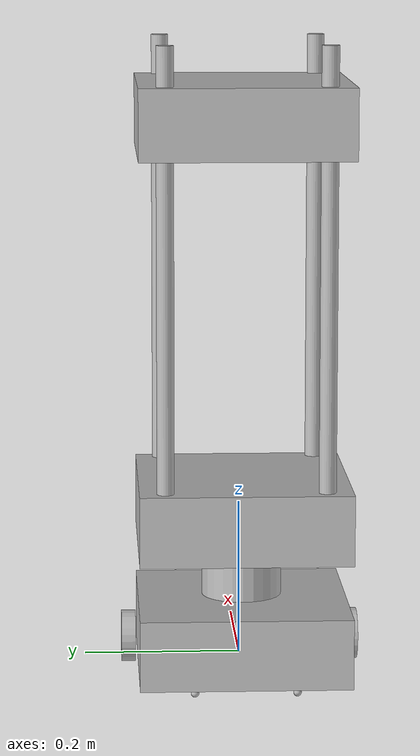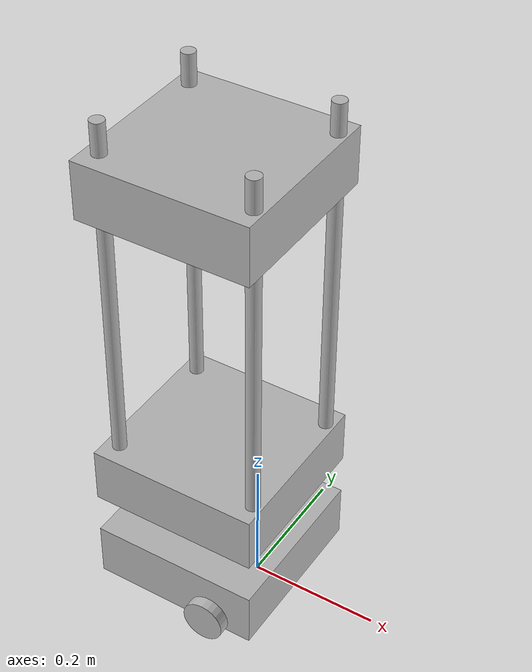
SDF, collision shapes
<?xml version="1.0" ?>
<sdf version="1.5">
  <model name="turtlebot3_waffle_pi">
  <pose>0.0 0.0 0.0 0.0 0.0 0.0</pose>

    <link name="base_footprint"/>

    <link name="base_link">

      <inertial>
        <pose>-0.064 0 0.048 0 0 0</pose>
        <inertia>
          <ixx>4.2111447e-02</ixx>
          <ixy>0</ixy>
          <ixz>0</ixz>
          <iyy>4.2111447e-02</iyy>
          <iyz>0</iyz>
          <izz>7.5254874e-02</izz>
        </inertia>
        <mass>1.3729096e+00</mass>
      </inertial>

      <collision name="base_collision">
        <pose>-0.064 0 0.048 0 0 0</pose>
        <geometry>
          <box>
            <size>0.265 0.265 0.089</size>
          </box>
        </geometry>
      </collision>

      <visual name="base_visual">
        <pose>-0.064 0 0 0 0 0</pose>
        <geometry>
          <mesh>
            <uri>model://turtlebot3_waffle_pi/meshes/waffle_pi_base.dae</uri>
            <scale>0.001 0.001 0.001</scale>
          </mesh>
        </geometry>
      </visual>
    </link>

    <link name="middle_base_link">

      <inertial>
        <pose>-0.064 0 0.205 0 0 0</pose>
        <inertia>
          <ixx>4.2111447e-02</ixx>
          <ixy>0</ixy>
          <ixz>0</ixz>
          <iyy>4.2111447e-02</iyy>
          <iyz>0</iyz>
          <izz>7.5254874e-02</izz>
        </inertia>
        <mass>0.0729096e+00</mass>
      </inertial>

      <collision name="middle_base_collision">
        <pose>-0.064 0 0.205 0 0 0</pose>
        <geometry>
          <box>
            <size>0.265 0.265 0.089</size>
          </box>
        </geometry>
      </collision>

      <visual name="middle_base_visual">
        <pose>-0.064 0 0.205 0 0 0</pose>
        <geometry>
          <mesh>
            <uri>model://turtlebot3_waffle_pi/meshes/waffle_pi_base.dae</uri>
            <scale>0.001 0.001 0.001</scale>
          </mesh>
        </geometry>
      </visual>
    </link>

    <link name="top_base_link">

      <inertial>
        <pose>-0.064 0 0.705 0 0 0</pose>
        <inertia>
          <ixx>4.2111447e-02</ixx>
          <ixy>0</ixy>
          <ixz>0</ixz>
          <iyy>4.2111447e-02</iyy>
          <iyz>0</iyz>
          <izz>7.5254874e-02</izz>
        </inertia>
        <mass>0.0729096e+00</mass>
      </inertial>

      <collision name="top_base_collision">
        <pose>-0.064 0 0.705 0 0 0</pose>
        <geometry>
          <box>
            <size>0.265 0.265 0.089</size>
          </box>
        </geometry>
      </collision>

      <visual name="top_base_visual">
        <pose>-0.064 0 0.705 0 0 0</pose>
        <geometry>
          <mesh>
            <uri>model://turtlebot3_waffle_pi/meshes/waffle_pi_base.dae</uri>
            <scale>0.001 0.001 0.001</scale>
          </mesh>
        </geometry>
      </visual>
    </link>

    <!-- middle_pillar -->

    <link name="top_left_middle_pillar_link">
      <inertial>
        <pose>0.054 0.1 0.1718 0 0 0</pose>
        <inertia>
          <ixx>0.001</ixx>
          <ixy>0.000</ixy>
          <ixz>0.000</ixz>
          <iyy>0.001</iyy>
          <iyz>0.000</iyz>
          <izz>0.001</izz>
        </inertia>
        <mass>0.014</mass>
      </inertial>

      <collision name="top_left_middle_pillar_collision">
        <pose>0.054 0.1 0.1718 0 0 0</pose>
        <geometry>
          <cylinder>
            <radius>0</radius>
            <length>0.2</length>
          </cylinder>
        </geometry>
      </collision>

      <visual name="top_left_middle_pillar_visual">
        <pose>0.054 0.1 0.1718 0 0 0</pose>
        <geometry>
          <cylinder>
            <radius>0</radius>
            <length>0.2</length>
          </cylinder>
        </geometry>
      </visual>
    </link>

    <link name="top_right_middle_pillar_link">
      <inertial>
        <pose>0.054 -0.1 0.1718 0 0 0</pose>
        <inertia>
          <ixx>0.001</ixx>
          <ixy>0.000</ixy>
          <ixz>0.000</ixz>
          <iyy>0.001</iyy>
          <iyz>0.000</iyz>
          <izz>0.001</izz>
        </inertia>
        <mass>0.014</mass>
      </inertial>

      <collision name="top_right_middle_pillar_collision">
        <pose>0.054 -0.1 0.1718 0 0 0</pose>
        <geometry>
          <cylinder>
            <radius>0</radius>
            <length>0.2</length>
          </cylinder>
        </geometry>
      </collision>

      <visual name="top_right_middle_pillar_visual">
        <pose>0.054 -0.1 0.1718 0 0 0</pose>
        <geometry>
          <cylinder>
            <radius>0</radius>
            <length>0.2</length>
          </cylinder>
        </geometry>
      </visual>
    </link>

    <link name="bottom_left_middle_pillar_link">
      <inertial>
        <pose>-0.174 0.1 0.1718 0 0 0</pose>
        <inertia>
          <ixx>0.001</ixx>
          <ixy>0.000</ixy>
          <ixz>0.000</ixz>
          <iyy>0.001</iyy>
          <iyz>0.000</iyz>
          <izz>0.001</izz>
        </inertia>
        <mass>0.014</mass>
      </inertial>

      <collision name="bottom_left_middle_pillar_collision">
        <pose>-0.174 0.1 0.1718 0 0 0</pose>
        <geometry>
          <cylinder>
            <radius>0</radius>
            <length>0.2</length>
          </cylinder>
        </geometry>
      </collision>

      <visual name="bottom_left_middle_pillar_visual">
        <pose>-0.174 0.1 0.1718 0 0 0</pose>
        <geometry>
          <cylinder>
            <radius>0</radius>
            <length>0.2</length>
          </cylinder>
        </geometry>
      </visual>
    </link>

    <link name="bottom_right_middle_pillar_link">
      <inertial>
        <pose>-0.174 -0.1 0.1718 0 0 0</pose>
        <inertia>
          <ixx>0.001</ixx>
          <ixy>0.000</ixy>
          <ixz>0.000</ixz>
          <iyy>0.001</iyy>
          <iyz>0.000</iyz>
          <izz>0.001</izz>
        </inertia>
        <mass>0.014</mass>
      </inertial>

      <collision name="bottom_middle_right_pillar_collision">
        <pose>-0.174 -0.1 0.1718 0 0 0</pose>
        <geometry>
          <cylinder>
            <radius>0</radius>
            <length>0.2</length>
          </cylinder>
        </geometry>
      </collision>

      <visual name="bottom_right_middle_pillar_visual">
        <pose>-0.174 -0.1 0.1718 0 0 0</pose>
        <geometry>
          <cylinder>
            <radius>0</radius>
            <length>0.2</length>
          </cylinder>
        </geometry>
      </visual>
    </link>

    <!-- top pillar link-->

    <link name="top_left_pillar_link">
      <inertial>
        <pose>0.054 0.1 0.5218 0 0 0</pose>
        <inertia>
          <ixx>0.001</ixx>
          <ixy>0.000</ixy>
          <ixz>0.000</ixz>
          <iyy>0.001</iyy>
          <iyz>0.000</iyz>
          <izz>0.001</izz>
        </inertia>
        <mass>0.014</mass>
      </inertial>

      <collision name="top_left_pillar_collision">
        <pose>0.054 0.1 0.5218 0 0 0</pose>
        <geometry>
          <cylinder>
            <radius>0.0108</radius>
            <length>0.555</length>
          </cylinder>
        </geometry>
      </collision>

      <visual name="top_left_pillar_visual">
        <pose>0.054 0.1 0.5218 0 0 0</pose>
        <geometry>
          <cylinder>
            <radius>0.0108</radius>
            <length>0.555</length>
          </cylinder>
        </geometry>
      </visual>
    </link>

    <link name="top_right_pillar_link">
      <inertial>
        <pose>0.054 -0.1 0.5218 0 0 0</pose>
        <inertia>
          <ixx>0.001</ixx>
          <ixy>0.000</ixy>
          <ixz>0.000</ixz>
          <iyy>0.001</iyy>
          <iyz>0.000</iyz>
          <izz>0.001</izz>
        </inertia>
        <mass>0.014</mass>
      </inertial>

      <collision name="top_right_pillar_collision">
        <pose>0.054 -0.1 0.5218 0 0 0</pose>
        <geometry>
          <cylinder>
            <radius>0.0108</radius>
            <length>0.555</length>
          </cylinder>
        </geometry>
      </collision>

      <visual name="top_right_pillar_visual">
        <pose>0.054 -0.1 0.5218 0 0 0</pose>
        <geometry>
          <cylinder>
            <radius>0.0108</radius>
            <length>0.555</length>
          </cylinder>
        </geometry>
      </visual>
    </link>

    <link name="bottom_left_pillar_link">
      <inertial>
        <pose>-0.174 0.1 0.5218 0 0 0</pose>
        <inertia>
          <ixx>0.001</ixx>
          <ixy>0.000</ixy>
          <ixz>0.000</ixz>
          <iyy>0.001</iyy>
          <iyz>0.000</iyz>
          <izz>0.001</izz>
        </inertia>
        <mass>0.014</mass>
      </inertial>

      <collision name="bottom_left_pillar_collision">
        <pose>-0.174 0.1 0.5218 0 0 0</pose>
        <geometry>
          <cylinder>
            <radius>0.0108</radius>
            <length>0.555</length>
          </cylinder>
        </geometry>
      </collision>

      <visual name="bottom_left_pillar_visual">
        <pose>-0.174 0.1 0.5218 0 0 0</pose>
        <geometry>
          <cylinder>
            <radius>0.0108</radius>
            <length>0.555</length>
          </cylinder>
        </geometry>
      </visual>
    </link>

    <link name="bottom_right_pillar_link">
      <inertial>
        <pose>-0.174 -0.1 0.5218 0 0 0</pose>
        <inertia>
          <ixx>0.001</ixx>
          <ixy>0.000</ixy>
          <ixz>0.000</ixz>
          <iyy>0.001</iyy>
          <iyz>0.000</iyz>
          <izz>0.001</izz>
        </inertia>
        <mass>0.014</mass>
      </inertial>

      <collision name="bottom_right_pillar_collision">
        <pose>-0.174 -0.1 0.5218 0 0 0</pose>
        <geometry>
          <cylinder>
            <radius>0.0108</radius>
            <length>0.555</length>
          </cylinder>
        </geometry>
      </collision>

      <visual name="bottom_right_pillar_visual">
        <pose>-0.174 -0.1 0.5218 0 0 0</pose>
        <geometry>
          <cylinder>
            <radius>0.0108</radius>
            <length>0.555</length>
          </cylinder>
        </geometry>
      </visual>
    </link>

    <link name="imu_link">
      <sensor name="tb3_imu" type="imu">
        <always_on>true</always_on>
        <update_rate>200</update_rate>
        <imu>
          <angular_velocity>
            <x>
              <noise type="gaussian">
                <mean>0.0</mean>
                <stddev>2e-4</stddev>
              </noise>
            </x>
            <y>
              <noise type="gaussian">
                <mean>0.0</mean>
                <stddev>2e-4</stddev>
              </noise>
            </y>
            <z>
              <noise type="gaussian">
                <mean>0.0</mean>
                <stddev>2e-4</stddev>
              </noise>
            </z>
          </angular_velocity>
          <linear_acceleration>
            <x>
              <noise type="gaussian">
                <mean>0.0</mean>
                <stddev>1.7e-2</stddev>
              </noise>
            </x>
            <y>
              <noise type="gaussian">
                <mean>0.0</mean>
                <stddev>1.7e-2</stddev>
              </noise>
            </y>
            <z>
              <noise type="gaussian">
                <mean>0.0</mean>
                <stddev>1.7e-2</stddev>
              </noise>
            </z>
          </linear_acceleration>
        </imu>
        <plugin name="turtlebot3_imu" filename="libgazebo_ros_imu_sensor.so">
          <ros>
            <remapping>~/out:=imu</remapping>
          </ros>
        </plugin>
      </sensor>
    </link>

    <link name="base_scan">
      <inertial>
        <pose>-0.052 0 0.111 0 0 0</pose>
        <inertia>
          <ixx>0.001</ixx>
          <ixy>0.000</ixy>
          <ixz>0.000</ixz>
          <iyy>0.001</iyy>
          <iyz>0.000</iyz>
          <izz>0.001</izz>
        </inertia>
        <mass>0.114</mass>
      </inertial>

      <collision name="lidar_sensor_collision">
        <pose>-0.052 0 0.111 0 0 0</pose>
        <geometry>
          <cylinder>
            <radius>0.0508</radius>
            <length>0.055</length>
          </cylinder>
        </geometry>
      </collision>

      <visual name="lidar_sensor_visual">
        <pose>-0.064 0 0.121 0 0 0</pose>
        <geometry>
          <mesh>
            <uri>model://turtlebot3_waffle/meshes/lds.dae</uri>
            <scale>0.001 0.001 0.001</scale>
          </mesh>
        </geometry>
      </visual>

      <sensor name="hls_lfcd_lds" type="ray">
        <always_on>true</always_on>
        <visualize>true</visualize>
        <pose>-0.064 0 0.121 0 0 0</pose>
        <update_rate>5</update_rate>
        <ray>
          <scan>
            <horizontal>
              <samples>360</samples>
              <resolution>1.000000</resolution>
              <min_angle>0.000000</min_angle>
              <max_angle>6.280000</max_angle>
            </horizontal>
          </scan>
          <range>
            <min>0.120000</min>
            <max>3.5</max>
            <resolution>0.015000</resolution>
          </range>
          <noise>
            <type>gaussian</type>
            <mean>0.0</mean>
            <stddev>0.01</stddev>
          </noise>
        </ray>
        <plugin name="turtlebot3_laserscan" filename="libgazebo_ros_ray_sensor.so">
          <ros>
            <remapping>~/out:=scan</remapping>
          </ros>
          <output_type>sensor_msgs/LaserScan</output_type>
          <frame_name>base_scan</frame_name>
        </plugin>
      </sensor>
    </link>

    <link name="wheel_left_link">

      <inertial>
        <pose>0.0 0.144 0.023 -1.57 0 0</pose>
        <inertia>
          <ixx>1.8158194e-03</ixx>
          <ixy>-9.3392e-12</ixy>
          <ixz>1.04909e-11</ixz>
          <iyy>3.2922126e-03</iyy>
          <iyz>5.75694e-11</iyz>
          <izz>1.8158194e-03</izz>
        </inertia>
        <mass>2.8498940e-02</mass>
      </inertial>

      <collision name="wheel_left_collision">
        <pose>0.0 0.144 0.023 -1.57 0 0</pose>
        <geometry>
          <cylinder>
            <radius>0.033</radius>
            <length>0.018</length>
          </cylinder>
        </geometry>
        <surface>
          <!-- This friction pamareter don't contain reliable data!! -->
          <friction>
            <ode>
              <mu>100000</mu>
              <mu2>100000</mu2>
              <fdir1>0 0 0</fdir1>
              <slip1>0.0</slip1>
              <slip2>0.0</slip2>
            </ode>
          </friction>
          <contact>
            <ode>
              <soft_cfm>0</soft_cfm>
              <soft_erp>0.2</soft_erp>
              <kp>1e+5</kp>
              <kd>1</kd>
              <max_vel>0.01</max_vel>
              <min_depth>0.001</min_depth>
            </ode>
          </contact>
        </surface>
      </collision>

      <visual name="wheel_left_visual">
        <pose>0.0 0.144 0.023 0 0 0</pose>
        <geometry>
          <mesh>
            <uri>model://turtlebot3_waffle/meshes/tire.dae</uri>
            <scale>0.001 0.001 0.001</scale>
          </mesh>
        </geometry>
      </visual>
    </link>

    <link name="wheel_right_link">

      <inertial>
        <pose>0.0 -0.144 0.023 -1.57 0 0</pose>
        <inertia>
          <ixx>1.8158194e-03</ixx>
          <ixy>-9.3392e-12</ixy>
          <ixz>1.04909e-11</ixz>
          <iyy>3.2922126e-03</iyy>
          <iyz>5.75694e-11</iyz>
          <izz>1.8158194e-03</izz>
        </inertia>
        <mass>2.8498940e-02</mass>
      </inertial>

      <collision name="wheel_right_collision">
        <pose>0.0 -0.144 0.023 -1.57 0 0</pose>
        <geometry>
          <cylinder>
            <radius>0.033</radius>
            <length>0.018</length>
          </cylinder>
        </geometry>
        <surface>
          <!-- This friction pamareter don't contain reliable data!! -->
          <friction>
            <ode>
              <mu>100000</mu>
              <mu2>100000</mu2>
              <fdir1>0 0 0</fdir1>
              <slip1>0.0</slip1>
              <slip2>0.0</slip2>
            </ode>
          </friction>
          <contact>
            <ode>
              <soft_cfm>0</soft_cfm>
              <soft_erp>0.2</soft_erp>
              <kp>1e+5</kp>
              <kd>1</kd>
              <max_vel>0.01</max_vel>
              <min_depth>0.001</min_depth>
            </ode>
          </contact>
        </surface>
      </collision>

      <visual name="wheel_right_visual">
        <pose>0.0 -0.144 0.023 0 0 0</pose>
        <geometry>
          <mesh>
            <uri>model://turtlebot3_waffle/meshes/tire.dae</uri>
            <scale>0.001 0.001 0.001</scale>
          </mesh>
        </geometry>
      </visual>
    </link>

    <link name='caster_back_right_link'>
      <pose>-0.177 -0.064 -0.004 -1.57 0 0</pose>
      <inertial>
        <mass>0.001</mass>
        <inertia>
          <ixx>0.00001</ixx>
          <ixy>0.000</ixy>
          <ixz>0.000</ixz>
          <iyy>0.00001</iyy>
          <iyz>0.000</iyz>
          <izz>0.00001</izz>
        </inertia>
      </inertial>
      <collision name='collision'>
        <geometry>
          <sphere>
            <radius>0.005000</radius>
          </sphere>
        </geometry>
        <surface>
          <contact>
            <ode>
              <soft_cfm>0</soft_cfm>
              <soft_erp>0.2</soft_erp>
              <kp>1e+5</kp>
              <kd>1</kd>
              <max_vel>0.01</max_vel>
              <min_depth>0.001</min_depth>
            </ode>
          </contact>
        </surface>
      </collision>
    </link>

    <link name='caster_back_left_link'>
      <pose>-0.177 0.064 -0.004 -1.57 0 0</pose>
      <inertial>
        <mass>0.001</mass>
        <inertia>
          <ixx>0.00001</ixx>
          <ixy>0.000</ixy>
          <ixz>0.000</ixz>
          <iyy>0.00001</iyy>
          <iyz>0.000</iyz>
          <izz>0.00001</izz>
        </inertia>
      </inertial>
      <collision name='collision'>
        <geometry>
          <sphere>
            <radius>0.005000</radius>
          </sphere>
        </geometry>
        <surface>
          <contact>
            <ode>
              <soft_cfm>0</soft_cfm>
              <soft_erp>0.2</soft_erp>
              <kp>1e+5</kp>
              <kd>1</kd>
              <max_vel>0.01</max_vel>
              <min_depth>0.001</min_depth>
            </ode>
          </contact>
        </surface>
      </collision>
    </link>

    <link name="camera_link"/>

    <link name="camera_rgb_optical_frame">
      <inertial>
        <pose>0.016 0.0 0.755 0 0 0</pose>
        <inertia>
          <ixx>0.001</ixx>
          <ixy>0.000</ixy>
          <ixz>0.000</ixz>
          <iyy>0.001</iyy>
          <iyz>0.000</iyz>
          <izz>0.001</izz>
        </inertia>
        <mass>0.035</mass>
      </inertial>

      <pose>0.016 0.0 0.755 0 0 0</pose>
      <sensor name="camera" type="camera">
        <always_on>true</always_on>
        <visualize>true</visualize>
        <update_rate>10</update_rate>
        <camera name="picam">
          <horizontal_fov>2.1</horizontal_fov>
          <image>
              <width>160</width>
              <height>80</height>
              <format>R8G8B8</format>
          </image>
          <clip>
              <near>0.03</near>
              <far>100</far>
          </clip>
          <noise>
            <type>gaussian</type>
            <mean>0.0</mean>
            <stddev>0.007</stddev>
          </noise>
        </camera>
          <plugin name="camera_driver" filename="libgazebo_ros_camera.so">
            <ros>
	      <namespace>camera</namespace>
	      <remapping>image_raw:=/rgb/image_raw</remapping>
	      <remapping>camera_info:=/rgb/camera_info</remapping>
	    </ros>
          </plugin>
      </sensor>

      <!-- Depth Camera Sensor -->
      <sensor name="depth_camera" type="depth">
        <always_on>true</always_on>
        <update_rate>10</update_rate>
        <visualize>true</visualize>
        <camera>
          <horizontal_fov>2.1</horizontal_fov>
          <image>
            <width>160</width>
            <height>80</height>
            <format>R8G8R8</format>
          </image>
          <clip>
            <near>0.05</near>
            <far>8.0</far>
          </clip>
          <noise>
            <type>gaussian</type>
            <mean>0.0</mean>
            <stddev>0.007</stddev>
          </noise>
          <save enabled="false">
            <path>/home/dmsgv2/turtlebot3_drlnav/data/depth</path>
          </save>
        </camera>
        <plugin name="camera_driver" filename="libgazebo_ros_camera.so">
          <min_depth>0.0</min_depth>
          <max_depth>255.0</max_depth>
          <ros>
            <namespace>depth_camera</namespace>
            <remapping>image_raw:=/depth/image_raw</remapping>
            <remapping>camera_info:=/depth/camera_info</remapping>
          </ros>
        </plugin>
      </sensor>
    </link>

    <joint name="base_joint" type="fixed">
      <parent>base_footprint</parent>
      <child>base_link</child>
      <pose>0.0 0.0 0.010 0 0 0</pose>
    </joint>

    <!-- base_link - middle_pillar -->

    <joint name="top_left_middle_pillar_joint" type="fixed">
      <parent>base_link</parent>
      <child>top_left_middle_pillar_link</child>
      <pose>0.054 0.1 0.1718 0 0 0</pose>
    </joint>

    <joint name="top_right_middle_pillar_joint" type="fixed">
      <parent>base_link</parent>
      <child>top_right_middle_pillar_link</child>
      <pose>0.054 -0.1 0.1718 0 0 0</pose>
    </joint>

    <joint name="bottom_left_middle_pillar_joint" type="fixed">
      <parent>base_link</parent>
      <child>bottom_left_middle_pillar_link</child>
      <pose>-0.174 0.1 0.1718 0 0 0</pose>
    </joint>

    <joint name="bottom_right_middle_pillar_joint" type="fixed">
      <parent>base_link</parent>
      <child>bottom_right_middle_pillar_link</child>
      <pose>-0.174 -0.1 0.1718 0 0 0</pose>
    </joint>

    <!-- middle_pillar - middle_base -->

    <joint name="top_left_middle_base_joint" type="fixed">
      <parent>top_left_middle_pillar_link</parent>
      <child>middle_base_link</child>
      <pose>0.054 0.1 0.305 0 0 0</pose>
    </joint>

    <joint name="top_right_middle_base_joint" type="fixed">
      <parent>top_right_middle_pillar_link</parent>
      <child>middle_base_link</child>
      <pose>0.054 -0.1 0.305 0 0 0</pose>
    </joint>

    <joint name="bottom_left_middle_base_joint" type="fixed">
      <parent>bottom_left_middle_pillar_link</parent>
      <child>middle_base_link</child>
      <pose>-0.174 0.1 0.305 0 0 0</pose>
    </joint>

    <joint name="bottom_right_middle_base_joint" type="fixed">
      <parent>bottom_right_middle_pillar_link</parent>
      <child>middle_base_link</child>
      <pose>-0.174 -0.1 0.305 0 0 0</pose>
    </joint>

    <!-- middle_base - top_pillar -->

    <joint name="top_left_pillar_joint" type="fixed">
      <parent>middle_base_link</parent>
      <child>top_left_pillar_link</child>
      <pose>0.054 0.1 0.525 0 0 0</pose>
    </joint>

    <joint name="top_right_pillar_joint" type="fixed">
      <parent>middle_base_link</parent>
      <child>top_right_pillar_link</child>
      <pose>0.054 -0.1 0.525 0 0 0</pose>
    </joint>

    <joint name="bottom_left_pillar_joint" type="fixed">
      <parent>middle_base_link</parent>
      <child>bottom_left_pillar_link</child>
      <pose>-0.174 0.1 0.525 0 0 0</pose>
    </joint>

    <joint name="bottom_right_pillar_joint" type="fixed">
      <parent>middle_base_link</parent>
      <child>bottom_right_pillar_link</child>
      <pose>-0.174 -0.1 0.525 0 0 0</pose>
    </joint>

    <!-- top_pillar - top_base -->

    <joint name="top_left_top_base_joint" type="fixed">
      <parent>top_left_pillar_link</parent>
      <child>top_base_link</child>
      <pose>0.054 0.1 0.705 0 0 0</pose>
    </joint>

    <joint name="top_right_top_base_joint" type="fixed">
      <parent>top_right_pillar_link</parent>
      <child>top_base_link</child>
      <pose>0.054 -0.1 0.705 0 0 0</pose>
    </joint>

    <joint name="bottom_left_top_base_joint" type="fixed">
      <parent>bottom_left_pillar_link</parent>
      <child>top_base_link</child>
      <pose>-0.174 0.1 0.705 0 0 0</pose>
    </joint>

    <joint name="bottom_right_top_base_joint" type="fixed">
      <parent>bottom_right_pillar_link</parent>
      <child>top_base_link</child>
      <pose>-0.174 -0.1 0.705 0 0 0</pose>
    </joint>

    <joint name="wheel_left_joint" type="revolute">
      <parent>base_link</parent>
      <child>wheel_left_link</child>
      <pose>0.0 0.144 0.023 -1.57 0 0</pose>
      <axis>
        <xyz>0 0 1</xyz>
      </axis>
    </joint>

    <joint name="wheel_right_joint" type="revolute">
      <parent>base_link</parent>
      <child>wheel_right_link</child>
      <pose>0.0 -0.144 0.023 -1.57 0 0</pose>
      <axis>
        <xyz>0 0 1</xyz>
      </axis>
    </joint>

    <joint name='caster_back_right_joint' type='ball'>
      <parent>base_link</parent>
      <child>caster_back_right_link</child>
    </joint>

    <joint name='caster_back_left_joint' type='ball'>
      <parent>base_link</parent>
      <child>caster_back_left_link</child>
    </joint>

    <joint name="imu_joint" type="fixed">
      <parent>base_link</parent>
      <child>imu_link</child>
      <pose>-0.032 0 0.068 0 0 0</pose>
      <axis>
        <xyz>0 0 1</xyz>
      </axis>
    </joint>

    <joint name="lidar_joint" type="fixed">
      <parent>base_link</parent>
      <child>base_scan</child>
      <pose>-0.064 0 0.121 0 0 0</pose>
      <axis>
        <xyz>0 0 1</xyz>
      </axis>
    </joint>

    <joint name="camera_joint" type="fixed">
      <parent>base_link</parent>
      <child>camera_link</child>
      <pose>0.073 -0.011 0.084 0 0 0</pose>
      <axis>
        <xyz>0 0 1</xyz>
      </axis>
    </joint>

    <joint name="camera_rgb_joint" type="fixed">
      <parent>camera_link</parent>
      <child>camera_rgb_optical_frame</child>
      <pose>0.003 0.011 0.009 0 0 0</pose>
      <axis>
        <xyz>0 0 1</xyz>
      </axis>
    </joint>

    <plugin name="turtlebot3_diff_drive" filename="libgazebo_ros_diff_drive.so">

      <ros>
      </ros>

      <update_rate>30</update_rate>

      <!-- wheels -->
      <left_joint>wheel_left_joint</left_joint>
      <right_joint>wheel_right_joint</right_joint>

      <!-- kinematics -->
      <wheel_separation>0.287</wheel_separation>
      <wheel_diameter>0.066</wheel_diameter>

      <!-- limits -->
      <max_wheel_torque>20</max_wheel_torque>
      <max_wheel_acceleration>1.0</max_wheel_acceleration>

      <command_topic>cmd_vel</command_topic>

      <!-- output -->
      <publish_odom>true</publish_odom>
      <publish_odom_tf>true</publish_odom_tf>
      <publish_wheel_tf>false</publish_wheel_tf>

      <odometry_topic>odom</odometry_topic>
      <odometry_frame>odom</odometry_frame>
      <robot_base_frame>base_footprint</robot_base_frame>

    </plugin>

    <plugin name="turtlebot3_joint_state" filename="libgazebo_ros_joint_state_publisher.so">
      <ros>
        <remapping>~/out:=joint_states</remapping>
      </ros>
      <update_rate>30</update_rate>
      <joint_name>wheel_left_joint</joint_name>
      <joint_name>wheel_right_joint</joint_name>
    </plugin>

  </model>
</sdf>
